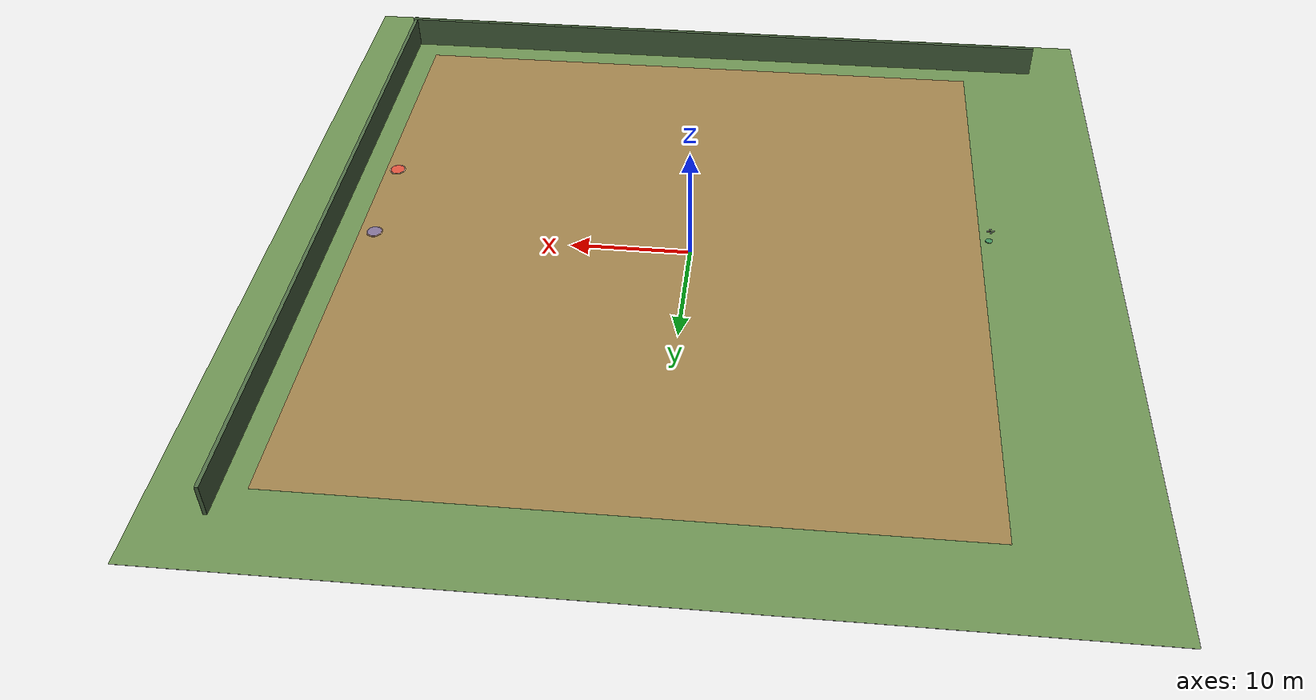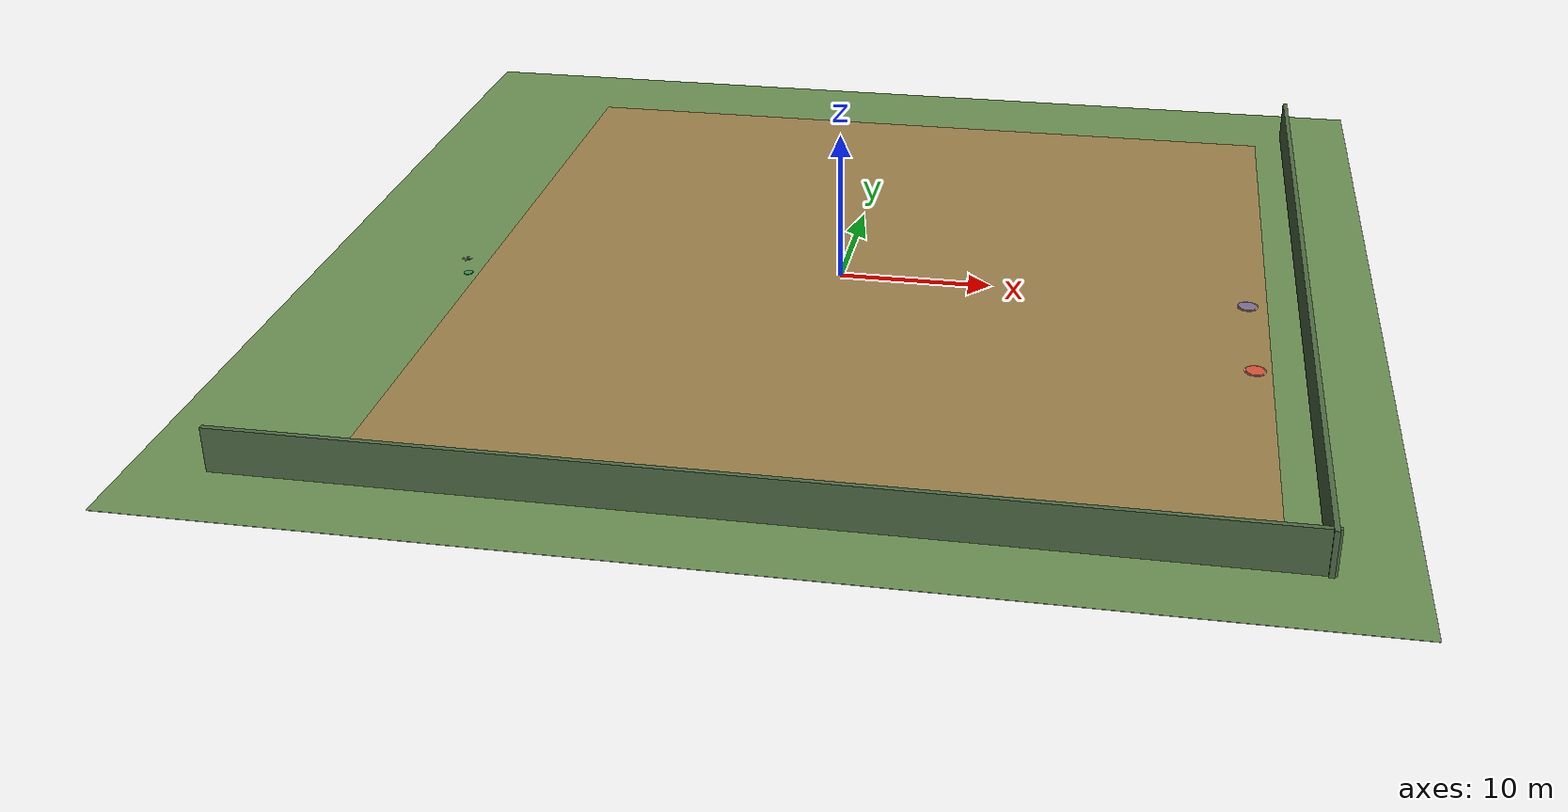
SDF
<sdf version="1.7">
 <world name="zx2026_forest">
  <include><uri>model://sun</uri></include>
  <model name="ground_plane">
   <static>true</static>
   <pose>0.00 0.00 -0.01 0 0 0</pose>
   <link name="link">
    <collision name="col"><geometry><box><size>70.00 70.00 0.02</size></box></geometry></collision>
    <visual name="vis">
     <geometry><box><size>70.00 70.00 0.02</size></box></geometry>
     <material>
      <ambient>0.42 0.56 0.32 1.00</ambient>
      <diffuse>0.42 0.56 0.32 1.00</diffuse>
      <specular>0.2 0.2 0.2 1</specular>
     </material>
    </visual>
   </link>
  </model>
  <model name="crossing_zone">
   <static>true</static>
   <pose>2.00 0.00 0.05 0 0 0</pose>
   <link name="link">
    <collision name="col"><geometry><box><size>52.00 56.00 0.02</size></box></geometry></collision>
    <visual name="vis">
     <geometry><box><size>52.00 56.00 0.02</size></box></geometry>
     <material>
      <ambient>0.85 0.48 0.31 0.50</ambient>
      <diffuse>0.85 0.48 0.31 0.50</diffuse>
      <specular>0.2 0.2 0.2 1</specular>
     </material>
    </visual>
   </link>
  </model>
  <model name="fence_e">
   <static>true</static>
   <pose>30.15 0.00 1.40 0 0 0</pose>
   <link name="link">
    <collision name="col"><geometry><box><size>0.30 60.90 2.80</size></box></geometry></collision>
    <visual name="vis">
     <geometry><box><size>0.30 60.90 2.80</size></box></geometry>
     <material>
      <ambient>0.31 0.42 0.27 1.00</ambient>
      <diffuse>0.31 0.42 0.27 1.00</diffuse>
      <specular>0.2 0.2 0.2 1</specular>
     </material>
    </visual>
   </link>
  </model>
  <model name="fence_s">
   <static>true</static>
   <pose>0.00 -30.15 1.40 0 0 0</pose>
   <link name="link">
    <collision name="col"><geometry><box><size>60.90 0.30 2.80</size></box></geometry></collision>
    <visual name="vis">
     <geometry><box><size>60.90 0.30 2.80</size></box></geometry>
     <material>
      <ambient>0.31 0.42 0.27 1.00</ambient>
      <diffuse>0.31 0.42 0.27 1.00</diffuse>
      <specular>0.2 0.2 0.2 1</specular>
     </material>
    </visual>
   </link>
  </model>
  <model name="pad_2">
   <static>true</static>
   <pose>-24.75 -3.75 0.025 0 0 0</pose>
   <link name="pad">
    <collision name="col">
     <geometry><cylinder><radius>0.3</radius><length>0.05</length></cylinder></geometry>
    </collision>
    <visual name="vis">
     <geometry><cylinder><radius>0.3</radius><length>0.05</length></cylinder></geometry>
     <material>
      <ambient>0.25 0.55 0.35 1.00</ambient>
      <diffuse>0.25 0.55 0.35 1.00</diffuse>
      <specular>0.2 0.2 0.2 1</specular>
     </material>
    </visual>
   </link>
  </model>
  <model name="drop_1">
   <static>true</static>
   <pose>27.00 -9.00 0.0 0 0 0</pose>
   <link name="platform">
    <collision name="col">
     <geometry><cylinder><radius>0.60</radius><length>0.05</length></cylinder></geometry>
    </collision>
    <visual name="disc">
     <pose>0 0 0.025 0 0 0</pose>
     <geometry><cylinder><radius>0.60</radius><length>0.05</length></cylinder></geometry>
     <material>
      <ambient>0.90 0.20 0.20 1.00</ambient>
      <diffuse>0.90 0.20 0.20 1.00</diffuse>
      <specular>0.2 0.2 0.2 1</specular>
     </material>
    </visual>
    <visual name="rim">
     <pose>0 0 0.01 0 0 0</pose>
     <geometry><cylinder><radius>0.68</radius><length>0.02</length></cylinder></geometry>
     <material>
      <ambient>0.95 0.95 0.95 1.00</ambient>
      <diffuse>0.95 0.95 0.95 1.00</diffuse>
      <specular>0.2 0.2 0.2 1</specular>
     </material>
    </visual>
   </link>
  </model>
  <model name="drop_2">
   <static>true</static>
   <pose>26.75 -0.25 0.0 0 0 0</pose>
   <link name="platform">
    <collision name="col">
     <geometry><cylinder><radius>0.60</radius><length>0.05</length></cylinder></geometry>
    </collision>
    <visual name="disc">
     <pose>0 0 0.025 0 0 0</pose>
     <geometry><cylinder><radius>0.60</radius><length>0.05</length></cylinder></geometry>
     <material>
      <ambient>0.20 0.45 0.90 1.00</ambient>
      <diffuse>0.20 0.45 0.90 1.00</diffuse>
      <specular>0.2 0.2 0.2 1</specular>
     </material>
    </visual>
    <visual name="rim">
     <pose>0 0 0.01 0 0 0</pose>
     <geometry><cylinder><radius>0.68</radius><length>0.02</length></cylinder></geometry>
     <material>
      <ambient>0.95 0.95 0.95 1.00</ambient>
      <diffuse>0.95 0.95 0.95 1.00</diffuse>
      <specular>0.2 0.2 0.2 1</specular>
     </material>
    </visual>
   </link>
  </model>
  <model name="drone_2">
   <pose>-24.75 -3.75 1.0 0 0 0</pose>
   <link name="base_link">
    <inertial>
     <mass>2.0</mass>
     <inertia><ixx>0.04833</ixx><iyy>0.04833</iyy><izz>0.08333</izz><ixy>0</ixy><ixz>0</ixz><iyz>0</iyz></inertia>
    </inertial>
    <collision name="col"><geometry><box><size>0.5 0.5 0.2</size></box></geometry></collision>
    <visual name="chassis">
     <geometry><box><size>0.16 0.16 0.05</size></box></geometry>
     <material>
      <ambient>0.30 0.85 0.45 1.00</ambient>
      <diffuse>0.30 0.85 0.45 1.00</diffuse>
      <specular>0.2 0.2 0.2 1</specular>
     </material>
    </visual>
    <visual name="top">
     <pose>0.000 0.000 0.033 0 0 0.000</pose>
     <geometry><box><size>0.09 0.09 0.015</size></box></geometry>
     <material>
      <ambient>0.16 0.16 0.18 1.00</ambient>
      <diffuse>0.16 0.16 0.18 1.00</diffuse>
      <specular>0.2 0.2 0.2 1</specular>
     </material>
    </visual>
    <visual name="nose">
     <pose>0.085 0.000 0.010 0 0 0.000</pose>
     <geometry><box><size>0.03 0.03 0.035</size></box></geometry>
     <material>
      <ambient>0.95 0.25 0.20 1.00</ambient>
      <diffuse>0.95 0.25 0.20 1.00</diffuse>
      <specular>0.2 0.2 0.2 1</specular>
     </material>
    </visual>
    <visual name="arm0">
     <pose>0.120 0.000 0.010 0 0 0.000</pose>
     <geometry><box><size>0.24 0.024 0.016</size></box></geometry>
     <material>
      <ambient>0.24 0.24 0.26 1.00</ambient>
      <diffuse>0.24 0.24 0.26 1.00</diffuse>
      <specular>0.2 0.2 0.2 1</specular>
     </material>
    </visual>
    <visual name="motor0">
     <pose>0.240 0.000 0.032 0 0 0.000</pose>
     <geometry><cylinder><radius>0.032</radius><length>0.03</length></cylinder></geometry>
     <material>
      <ambient>0.33 0.33 0.35 1.00</ambient>
      <diffuse>0.33 0.33 0.35 1.00</diffuse>
      <specular>0.2 0.2 0.2 1</specular>
     </material>
    </visual>
    <visual name="prop0">
     <pose>0.240 0.000 0.062 0 0 0.000</pose>
     <geometry><cylinder><radius>0.10</radius><length>0.006</length></cylinder></geometry>
     <material>
      <ambient>0.82 0.82 0.84 0.55</ambient>
      <diffuse>0.82 0.82 0.84 0.55</diffuse>
      <specular>0.2 0.2 0.2 1</specular>
     </material>
    </visual>
    <visual name="arm1">
     <pose>-0.120 0.000 0.010 0 0 0.000</pose>
     <geometry><box><size>0.24 0.024 0.016</size></box></geometry>
     <material>
      <ambient>0.24 0.24 0.26 1.00</ambient>
      <diffuse>0.24 0.24 0.26 1.00</diffuse>
      <specular>0.2 0.2 0.2 1</specular>
     </material>
    </visual>
    <visual name="motor1">
     <pose>-0.240 0.000 0.032 0 0 0.000</pose>
     <geometry><cylinder><radius>0.032</radius><length>0.03</length></cylinder></geometry>
     <material>
      <ambient>0.33 0.33 0.35 1.00</ambient>
      <diffuse>0.33 0.33 0.35 1.00</diffuse>
      <specular>0.2 0.2 0.2 1</specular>
     </material>
    </visual>
    <visual name="prop1">
     <pose>-0.240 0.000 0.062 0 0 0.000</pose>
     <geometry><cylinder><radius>0.10</radius><length>0.006</length></cylinder></geometry>
     <material>
      <ambient>0.82 0.82 0.84 0.55</ambient>
      <diffuse>0.82 0.82 0.84 0.55</diffuse>
      <specular>0.2 0.2 0.2 1</specular>
     </material>
    </visual>
    <visual name="arm2">
     <pose>0.000 0.120 0.010 0 0 0.000</pose>
     <geometry><box><size>0.024 0.24 0.016</size></box></geometry>
     <material>
      <ambient>0.24 0.24 0.26 1.00</ambient>
      <diffuse>0.24 0.24 0.26 1.00</diffuse>
      <specular>0.2 0.2 0.2 1</specular>
     </material>
    </visual>
    <visual name="motor2">
     <pose>0.000 0.240 0.032 0 0 0.000</pose>
     <geometry><cylinder><radius>0.032</radius><length>0.03</length></cylinder></geometry>
     <material>
      <ambient>0.33 0.33 0.35 1.00</ambient>
      <diffuse>0.33 0.33 0.35 1.00</diffuse>
      <specular>0.2 0.2 0.2 1</specular>
     </material>
    </visual>
    <visual name="prop2">
     <pose>0.000 0.240 0.062 0 0 0.000</pose>
     <geometry><cylinder><radius>0.10</radius><length>0.006</length></cylinder></geometry>
     <material>
      <ambient>0.82 0.82 0.84 0.55</ambient>
      <diffuse>0.82 0.82 0.84 0.55</diffuse>
      <specular>0.2 0.2 0.2 1</specular>
     </material>
    </visual>
    <visual name="arm3">
     <pose>0.000 -0.120 0.010 0 0 0.000</pose>
     <geometry><box><size>0.024 0.24 0.016</size></box></geometry>
     <material>
      <ambient>0.24 0.24 0.26 1.00</ambient>
      <diffuse>0.24 0.24 0.26 1.00</diffuse>
      <specular>0.2 0.2 0.2 1</specular>
     </material>
    </visual>
    <visual name="motor3">
     <pose>0.000 -0.240 0.032 0 0 0.000</pose>
     <geometry><cylinder><radius>0.032</radius><length>0.03</length></cylinder></geometry>
     <material>
      <ambient>0.33 0.33 0.35 1.00</ambient>
      <diffuse>0.33 0.33 0.35 1.00</diffuse>
      <specular>0.2 0.2 0.2 1</specular>
     </material>
    </visual>
    <visual name="prop3">
     <pose>0.000 -0.240 0.062 0 0 0.000</pose>
     <geometry><cylinder><radius>0.10</radius><length>0.006</length></cylinder></geometry>
     <material>
      <ambient>0.82 0.82 0.84 0.55</ambient>
      <diffuse>0.82 0.82 0.84 0.55</diffuse>
      <specular>0.2 0.2 0.2 1</specular>
     </material>
    </visual>
   </link>
   <plugin name="drone_vel_2" filename="libdrone_vel_plugin.so">
    <drone_id>2</drone_id>
    <kp>3.0</kp>
    <g>9.81</g>
   </plugin>
  </model>
 </world>
</sdf>
